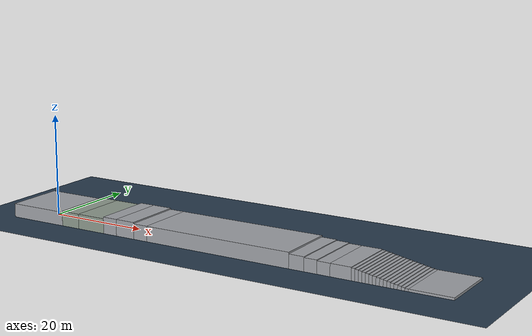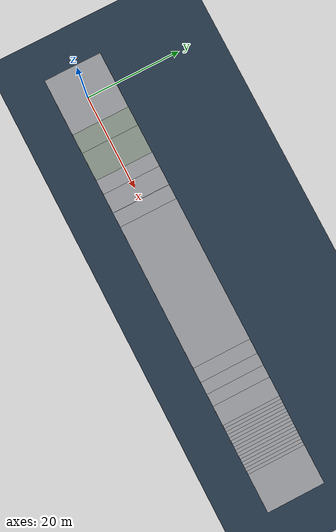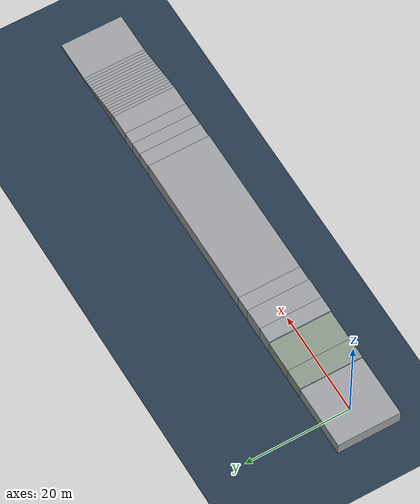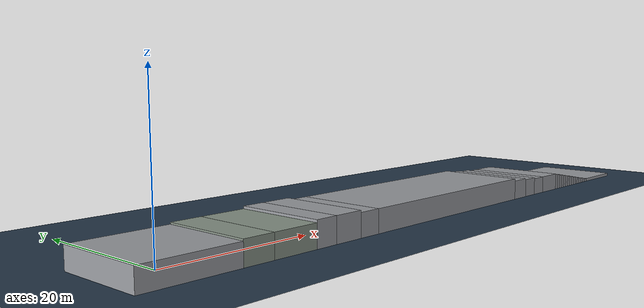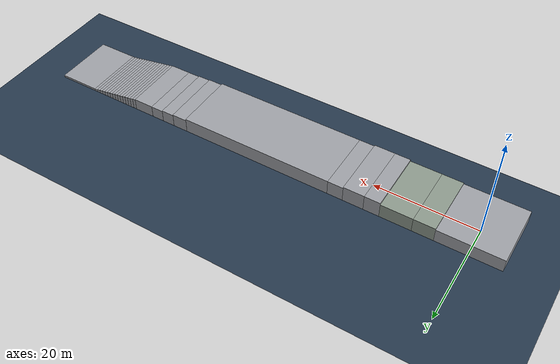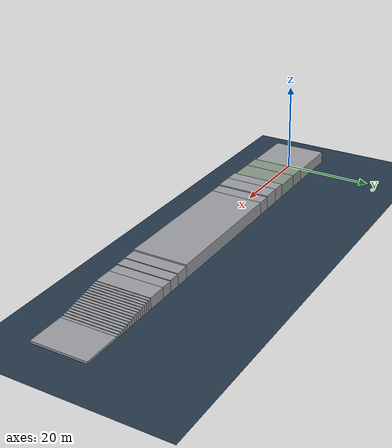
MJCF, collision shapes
<!-- 决赛路线彩排场景 bench_route：按执行计划 §16 要素表 + 点云实测剖面生成。摩擦 1.00。
     由 s10_dev/gen_route_rehearsal.py 生成，勿手改。尺寸未现场卷尺实测，仅用于切换逻辑与耗时彩排。-->
<mujoco model="S10_bench_route">
    <include file="./S10.xml"/>
    <worldbody>
      <body name="route">
        <geom name="seg00_start" type="box" pos="0.0000 0 1.3900" size="6.0000 6.0 1.3400" rgba="0.62 0.63 0.65 1" friction="1.00 0.01 0.001" condim="3"/>
        <geom name="seg01_grass_up" type="box" pos="8.0000 0 1.5000" size="2.0000 6.0 1.4500" rgba="0.55 0.60 0.55 1" friction="1.00 0.01 0.001" condim="3"/>
        <geom name="seg02_grass" type="box" pos="13.0000 0 1.5000" size="3.0000 6.0 1.4500" rgba="0.55 0.60 0.55 1" friction="1.00 0.01 0.001" condim="3"/>
        <geom name="seg03_gabion_up" type="box" pos="17.5000 0 1.6650" size="1.5000 6.0 1.6150" rgba="0.62 0.63 0.65 1" friction="1.00 0.01 0.001" condim="3"/>
        <geom name="seg04_plateau" type="box" pos="21.0000 0 1.6650" size="2.0000 6.0 1.6150" rgba="0.62 0.63 0.65 1" friction="1.00 0.01 0.001" condim="3"/>
        <geom name="seg05_road_down" type="box" pos="24.5000 0 1.5400" size="1.5000 6.0 1.4900" rgba="0.62 0.63 0.65 1" friction="1.00 0.01 0.001" condim="3"/>
        <geom name="seg06_straight" type="box" pos="41.0000 0 1.5400" size="15.0000 6.0 1.4900" rgba="0.62 0.63 0.65 1" friction="1.00 0.01 0.001" condim="3"/>
        <geom name="seg07_curb_down" type="box" pos="57.5000 0 1.3850" size="1.5000 6.0 1.3350" rgba="0.62 0.63 0.65 1" friction="1.00 0.01 0.001" condim="3"/>
        <geom name="seg08_two15_a" type="box" pos="60.2500 0 1.3100" size="1.2500 6.0 1.2600" rgba="0.62 0.63 0.65 1" friction="1.00 0.01 0.001" condim="3"/>
        <geom name="seg09_two15_b" type="box" pos="62.7500 0 1.2350" size="1.2500 6.0 1.1850" rgba="0.62 0.63 0.65 1" friction="1.00 0.01 0.001" condim="3"/>
        <geom name="seg10_approach" type="box" pos="66.0000 0 1.2350" size="2.0000 6.0 1.1850" rgba="0.62 0.63 0.65 1" friction="1.00 0.01 0.001" condim="3"/>
        <geom name="seg11_stair00" type="box" pos="68.3250 0 1.1750" size="0.3250 6.0 1.1250" rgba="0.62 0.63 0.65 1" friction="1.00 0.01 0.001" condim="3"/>
        <geom name="seg12_stair01" type="box" pos="68.9750 0 1.1150" size="0.3250 6.0 1.0650" rgba="0.62 0.63 0.65 1" friction="1.00 0.01 0.001" condim="3"/>
        <geom name="seg13_stair02" type="box" pos="69.6250 0 1.0550" size="0.3250 6.0 1.0050" rgba="0.62 0.63 0.65 1" friction="1.00 0.01 0.001" condim="3"/>
        <geom name="seg14_stair03" type="box" pos="70.2750 0 0.9950" size="0.3250 6.0 0.9450" rgba="0.62 0.63 0.65 1" friction="1.00 0.01 0.001" condim="3"/>
        <geom name="seg15_stair04" type="box" pos="70.9250 0 0.9350" size="0.3250 6.0 0.8850" rgba="0.62 0.63 0.65 1" friction="1.00 0.01 0.001" condim="3"/>
        <geom name="seg16_stair05" type="box" pos="71.5750 0 0.8750" size="0.3250 6.0 0.8250" rgba="0.62 0.63 0.65 1" friction="1.00 0.01 0.001" condim="3"/>
        <geom name="seg17_stair06" type="box" pos="72.2250 0 0.8150" size="0.3250 6.0 0.7650" rgba="0.62 0.63 0.65 1" friction="1.00 0.01 0.001" condim="3"/>
        <geom name="seg18_stair07" type="box" pos="72.8750 0 0.7550" size="0.3250 6.0 0.7050" rgba="0.62 0.63 0.65 1" friction="1.00 0.01 0.001" condim="3"/>
        <geom name="seg19_stair08" type="box" pos="73.5250 0 0.6950" size="0.3250 6.0 0.6450" rgba="0.62 0.63 0.65 1" friction="1.00 0.01 0.001" condim="3"/>
        <geom name="seg20_stair09" type="box" pos="74.1750 0 0.6350" size="0.3250 6.0 0.5850" rgba="0.62 0.63 0.65 1" friction="1.00 0.01 0.001" condim="3"/>
        <geom name="seg21_stair10" type="box" pos="74.8250 0 0.5750" size="0.3250 6.0 0.5250" rgba="0.62 0.63 0.65 1" friction="1.00 0.01 0.001" condim="3"/>
        <geom name="seg22_stair11" type="box" pos="75.4750 0 0.5150" size="0.3250 6.0 0.4650" rgba="0.62 0.63 0.65 1" friction="1.00 0.01 0.001" condim="3"/>
        <geom name="seg23_stair12" type="box" pos="76.1250 0 0.4550" size="0.3250 6.0 0.4050" rgba="0.62 0.63 0.65 1" friction="1.00 0.01 0.001" condim="3"/>
        <geom name="seg24_stair13" type="box" pos="76.7750 0 0.3950" size="0.3250 6.0 0.3450" rgba="0.62 0.63 0.65 1" friction="1.00 0.01 0.001" condim="3"/>
        <geom name="seg25_stair14" type="box" pos="77.4250 0 0.3350" size="0.3250 6.0 0.2850" rgba="0.62 0.63 0.65 1" friction="1.00 0.01 0.001" condim="3"/>
        <geom name="seg26_stair15" type="box" pos="78.0750 0 0.2750" size="0.3250 6.0 0.2250" rgba="0.62 0.63 0.65 1" friction="1.00 0.01 0.001" condim="3"/>
        <geom name="seg27_plaza" type="box" pos="82.4000 0 0.2750" size="4.0000 6.0 0.2250" rgba="0.62 0.63 0.65 1" friction="1.00 0.01 0.001" condim="3"/>
      </body>
    </worldbody>
</mujoco>

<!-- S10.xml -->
<mujoco model="S10">
  <default>
      <default class="robot">
          <default class="motor">
              <joint/>
              <motor/>
          </default>
          <default class="visual">
              <geom material="default_material" contype="0" conaffinity="0" group="2"/>
          </default>
          <default class="collision">
              <geom material="collision_material" condim="3" contype="1" conaffinity="1" solref="0.005 1"
                    friction="1 0.01 0.001" density="0" group="1"/>
          </default>
      </default>
  </default>

  <compiler angle="radian" meshdir="../meshes/"/>
  <compiler autolimits="true"/>

  <asset>
    <material name="default_material" rgba="0.7 0.7 0.7 1"/>
    <material name="collision_material" rgba="0.0 0.4 0.8 0.2"/>
    <mesh name="base_link" file="base_link.STL"/>
    <mesh name="fl_hipx" file="fl_hipx.STL"/>
    <mesh name="fl_hipy" file="fl_hipy.STL"/>
    <mesh name="fl_knee" file="fl_knee.STL"/>
    <mesh name="fl_wheel" file="fl_wheel.STL"/>
    <mesh name="fr_hipx" file="fr_hipx.STL"/>
    <mesh name="fr_hipy" file="fr_hipy.STL"/>
    <mesh name="fr_knee" file="fr_knee.STL"/>
    <mesh name="fr_wheel" file="fr_wheel.STL"/>
    <mesh name="hl_hipx" file="hl_hipx.STL"/>
    <mesh name="hl_hipy" file="hl_hipy.STL"/>
    <mesh name="hl_knee" file="hl_knee.STL"/>
    <mesh name="hl_wheel" file="hl_wheel.STL"/>
    <mesh name="hr_hipx" file="hr_hipx.STL"/>
    <mesh name="hr_hipy" file="hr_hipy.STL"/>
    <mesh name="hr_knee" file="hr_knee.STL"/>
    <mesh name="hr_wheel" file="hr_wheel.STL"/>
    <texture name="texplane" type="2d" builtin="checker" rgb1=".2 .3 .4" rgb2=".1 0.15 0.2"
              width="512" height="512"/>
    <material name='MatPlane' reflectance='0.3' texture="texplane" texrepeat="1 1" texuniform="true"/>
  </asset>

  <worldbody>
    <!-- 灯光 -->
    <light directional="true" pos="-0.5 0.5 3" dir="0 0 -1"/>
    <geom name='floor' pos='0 0 0' size='100 100 .125' type='plane' material="MatPlane" condim='3'
          friction="1 0.01 0.01" group="0"/>

    <body name="base_link" pos="0 0.0 0.5" quat="1 0 0 0" childclass="robot">
      <freejoint name="floating_base"/>
      <inertial pos="-0.000512 0.057317 0.001182"
                quat="1 0 0 0"
                mass="8.023087" diaginertia="0.115559 0.171329 0.262028"/>
        <site name="imu_site" pos="0.0075 -0.0373 0.0556" size="0.005" rgba="1 0 0 1"/>
        <site name="base_site" pos="0 0 0" quat="1 0 0 0"/>
        <body name="front_lidar_link" pos="0.2 0 0.08" euler="0 0.436332313 0">
          <site name="front_lidar_site" type="sphere" size="0.025" rgba="0 0.8 0.8 1"/>
        </body>
      <geom type="mesh" class="visual" mesh="base_link"/>
      <geom size="0.08 0.3" pos="0 0.024 0" quat="0.707107 0 0.707107 0" type="cylinder" class="collision"/>
      <geom size="0.08 0.3" pos="0 -0.024 0" quat="0.707107 0 0.707107 0" type="cylinder" class="collision"/>
      <geom size="0.08 0.024 0.3" quat="0.707107 0 0.707107 0" type="box" class="collision"/>
      <body name="fl_hipx" pos="0.2277 0.0574 0">
        <inertial pos="-0.005034 0.023524 4.6e-05" quat="0.25609 0.665262 -0.228203 0.663151" mass="0.627405" diaginertia="0.000415056 0.000391723 0.000223221"/>
        <joint name="fl_hipx_joint" pos="0 0 0" axis="-1 0 0" range="-0.6109 0.6109" actuatorfrcrange="-50 50"/>
        <geom type="mesh" class="visual" mesh="fl_hipx"/>
        <geom size="0.04 0.05" pos="0 0.054 0" quat="0.707107 0.707107 0 0" type="cylinder" class="collision"/>
        <body name="fl_hipy" pos="0 0.0779 0">
          <inertial pos="7.4e-05 0.018439 -0.129675" quat="0.701304 -0.0510428 0.0516391 0.709155" mass="0.885874" diaginertia="0.00454086 0.00445199 0.00030515"/>
          <joint name="fl_hipy_joint" pos="0 0 0" axis="0 -1 0" range="-2.5307 2.5307" actuatorfrcrange="-50 50"/>
          <geom type="mesh" class="visual" mesh="fl_hipy"/>
          <geom size="0.032 0.012 0.09" pos="0 0.012 -0.09" type="box" class="collision"/>
          <geom size="0.04 0.04" pos="0 0.018 -0.18" quat="0.707107 0.707107 0 0" type="cylinder" class="collision"/>
          <body name="fl_knee" pos="0 0 -0.18">
            <inertial pos="-3.2e-05 0.013504 -0.156308" quat="0.703786 -0.068447 0.068447 0.703786" mass="0.640283" diaginertia="0.0022296 0.002221 0.000193398"/>
            <joint name="fl_knee_joint" pos="0 0 0" axis="0 -1 0" range="-2.7227 2.7227" actuatorfrcrange="-50 50"/>
            <geom type="mesh" class="visual" mesh="fl_knee"/>
            <geom size="0.029 0.01 0.09" pos="0 -0.012 -0.09" type="box" class="collision"/>
            <geom size="0.04 0.025" pos="0 0.002 -0.18" quat="0.707107 0.707107 0 0" type="cylinder" class="collision"/>
            <body name="fl_wheel" pos="0 0.045891 -0.18">
              <inertial pos="-8e-06 0.001694 -5e-06" quat="0.707107 0 0 0.707107" mass="0.587952" diaginertia="0.002003 0.001059 0.001059"/>
              <joint name="fl_wheel_joint" pos="0 0 0" axis="0 -1 0" actuatorfrcrange="-14 14"/>
              <geom type="mesh" class="visual" mesh="fl_wheel"/>
              <geom size="0.081 0.0185" quat="0.707107 0.707107 0 0" type="cylinder" class="collision"/>
            </body>
          </body>
        </body>
      </body>
      <body name="fr_hipx" pos="0.2277 -0.0574 0">
        <inertial pos="-0.004831 -0.02349 0.000169" quat="-0.278522 0.675499 0.205833 0.650968" mass="0.626546" diaginertia="0.000415238 0.000395047 0.000218715"/>
        <joint name="fr_hipx_joint" pos="0 0 0" axis="-1 0 0" range="-0.6109 0.6109" actuatorfrcrange="-50 50"/>
        <geom type="mesh" class="visual" mesh="fr_hipx"/>
        <geom size="0.04 0.05" pos="0 -0.054 0" quat="0.707107 0.707107 0 0" type="cylinder" class="collision"/>
        <body name="fr_hipy" pos="0 -0.0779 0">
          <inertial pos="-7.4e-05 -0.018439 -0.129675" quat="0.701304 0.0510428 -0.0516391 0.709155" mass="0.885874" diaginertia="0.00454086 0.00445199 0.00030515"/>
          <joint name="fr_hipy_joint" pos="0 0 0" axis="0 -1 0" range="-2.5307 2.5307" actuatorfrcrange="-50 50"/>
          <geom type="mesh" class="visual" mesh="fr_hipy"/>
          <geom size="0.032 0.012 0.09" pos="0 -0.012 -0.09" type="box" class="collision"/>
          <geom size="0.04 0.04" pos="0 -0.018 -0.18" quat="0.707107 0.707107 0 0" type="cylinder" class="collision"/>
          <body name="fr_knee" pos="0 0 -0.18">
            <inertial pos="3.2e-05 -0.013504 -0.156308" quat="0.703786 0.068447 -0.068447 0.703786" mass="0.640283" diaginertia="0.0022296 0.002221 0.000193398"/>
            <joint name="fr_knee_joint" pos="0 0 0" axis="0 -1 0" range="-2.7227 2.7227" actuatorfrcrange="-50 50"/>
            <geom type="mesh" class="visual" mesh="fr_knee"/>
            <geom size="0.029 0.01 0.09" pos="0 0.012 -0.09" type="box" class="collision"/>
            <geom size="0.04 0.025" pos="0 -0.002 -0.18" quat="0.707107 0.707107 0 0" type="cylinder" class="collision"/>
            <body name="fr_wheel" pos="0 -0.045891 -0.18">
              <inertial pos="8e-06 -0.001694 5e-06" quat="0.707107 0 0 0.707107" mass="0.587952" diaginertia="0.002003 0.001059 0.001059"/>
              <joint name="fr_wheel_joint" pos="0 0 0" axis="0 -1 0" actuatorfrcrange="-14 14"/>
              <geom type="mesh" class="visual" mesh="fr_wheel"/>
              <geom size="0.081 0.0185" quat="0.707107 0.707107 0 0" type="cylinder" class="collision"/>
            </body>
          </body>
        </body>
      </body>
      <body name="hl_hipx" pos="-0.2277 0.0574 0">
        <inertial pos="0.004831 0.02349 0.000169" quat="-0.205833 0.650968 0.278522 0.675499" mass="0.626546" diaginertia="0.000415238 0.000395047 0.000218715"/>
        <joint name="hl_hipx_joint" pos="0 0 0" axis="-1 0 0" range="-0.6109 0.6109" actuatorfrcrange="-50 50"/>
        <geom type="mesh" class="visual" mesh="hl_hipx"/>
        <geom size="0.04 0.05" pos="0 0.054 0" quat="0.707107 0.707107 0 0" type="cylinder" class="collision"/>
        <body name="hl_hipy" pos="0 0.0779 0">
          <inertial pos="7.4e-05 0.018439 -0.129675" quat="0.701304 -0.0510428 0.0516391 0.709155" mass="0.885874" diaginertia="0.00454086 0.00445199 0.00030515"/>
          <joint name="hl_hipy_joint" pos="0 0 0" axis="0 -1 0" range="-2.5307 2.5307" actuatorfrcrange="-50 50"/>
          <geom type="mesh" class="visual" mesh="hl_hipy"/>
          <geom size="0.032 0.012 0.09" pos="0 0.012 -0.09" type="box" class="collision"/>
          <geom size="0.04 0.04" pos="0 0.018 -0.18" quat="0.707107 0.707107 0 0" type="cylinder" class="collision"/>
          <body name="hl_knee" pos="0 0 -0.18">
            <inertial pos="-3.2e-05 0.013504 -0.156308" quat="0.703786 -0.068447 0.068447 0.703786" mass="0.640283" diaginertia="0.0022296 0.002221 0.000193398"/>
            <joint name="hl_knee_joint" pos="0 0 0" axis="0 -1 0" range="-2.7227 2.7227" actuatorfrcrange="-50 50"/>
            <geom type="mesh" class="visual" mesh="hl_knee"/>
            <geom size="0.029 0.01 0.09" pos="0 -0.012 -0.09" type="box" class="collision"/>
            <geom size="0.04 0.025" pos="0 0.002 -0.18" quat="0.707107 0.707107 0 0" type="cylinder" class="collision"/>
            <body name="hl_wheel" pos="0 0.054891 -0.18">
              <inertial pos="-8e-06 0.001694 -5e-06" quat="0.707107 0 0 0.707107" mass="0.587952" diaginertia="0.002003 0.001059 0.001059"/>
              <joint name="hl_wheel_joint" pos="0 0 0" axis="0 -1 0" actuatorfrcrange="-14 14"/>
              <geom type="mesh" class="visual" mesh="hl_wheel"/>
              <geom size="0.081 0.0185" quat="0.707107 0.707107 0 0" type="cylinder" class="collision"/>
            </body>
          </body>
        </body>
      </body>
      <body name="hr_hipx" pos="-0.2277 -0.0574 0">
        <inertial pos="0.005034 -0.023524 4.6e-05" quat="0.228203 0.663151 -0.25609 0.665262" mass="0.627405" diaginertia="0.000415056 0.000391723 0.000223221"/>
        <joint name="hr_hipx_joint" pos="0 0 0" axis="-1 0 0" range="-0.6109 0.6109" actuatorfrcrange="-50 50"/>
        <geom type="mesh" class="visual" mesh="hr_hipx"/>
        <geom size="0.04 0.05" pos="0 -0.054 0" quat="0.707107 0.707107 0 0" type="cylinder" class="collision"/>
        <body name="hr_hipy" pos="0 -0.0779 0">
          <inertial pos="-7.4e-05 -0.018439 -0.129675" quat="0.701304 0.0510428 -0.0516391 0.709155" mass="0.885874" diaginertia="0.00454086 0.00445199 0.00030515"/>
          <joint name="hr_hipy_joint" pos="0 0 0" axis="0 -1 0" range="-2.5307 2.5307" actuatorfrcrange="-50 50"/>
          <geom type="mesh" class="visual" mesh="hr_hipy"/>
          <geom size="0.032 0.012 0.09" pos="0 -0.012 -0.09" type="box" class="collision"/>
          <geom size="0.04 0.04" pos="0 -0.018 -0.18" quat="0.707107 0.707107 0 0" type="cylinder" class="collision"/>
          <body name="hr_knee" pos="0 0 -0.18">
            <inertial pos="3.2e-05 -0.013504 -0.156308" quat="0.703786 0.068447 -0.068447 0.703786" mass="0.640283" diaginertia="0.0022296 0.002221 0.000193398"/>
            <joint name="hr_knee_joint" pos="0 0 0" axis="0 -1 0" range="-2.7227 2.7227" actuatorfrcrange="-50 50"/>
            <geom type="mesh" class="visual" mesh="hr_knee"/>
            <geom size="0.029 0.01 0.09" pos="0 0.012 -0.09" type="box" class="collision"/>
            <geom size="0.04 0.025" pos="0 -0.002 -0.18" quat="0.707107 0.707107 0 0" type="cylinder" class="collision"/>
            <body name="hr_wheel" pos="0 -0.045891 -0.18">
              <inertial pos="8e-06 -0.001694 5e-06" quat="0.707107 0 0 0.707107" mass="0.587952" diaginertia="0.002003 0.001059 0.001059"/>
              <joint name="hr_wheel_joint" pos="0 0 0" axis="0 -1 0" actuatorfrcrange="-14 14"/>
              <geom type="mesh" class="visual" mesh="hr_wheel"/>
              <geom size="0.081 0.0185" quat="0.707107 0.707107 0 0" type="cylinder" class="collision"/>
            </body>
          </body>
        </body>
      </body>
    </body>
  </worldbody>

    <actuator>
        <motor name="fl_hipx_joint" joint="fl_hipx_joint" ctrllimited="true" ctrlrange="-50.00 50.00" gear="1"/>
        <motor name="fl_hipy_joint" joint="fl_hipy_joint" ctrllimited="true" ctrlrange="-50.00 50.00" gear="1"/>
        <motor name="fl_knee_joint" joint="fl_knee_joint" ctrllimited="true" ctrlrange="-50.00 50.00" gear="1"/>
        <motor name="fl_wheel_joint" joint="fl_wheel_joint" ctrllimited="true" ctrlrange="-14.00 14.00" gear="1"/>
        <motor name="fr_hipx_joint" joint="fr_hipx_joint" ctrllimited="true" ctrlrange="-50.00 50.00" gear="1"/>
        <motor name="fr_hipy_joint" joint="fr_hipy_joint" ctrllimited="true" ctrlrange="-50.00 50.00" gear="1"/>
        <motor name="fr_knee_joint" joint="fr_knee_joint" ctrllimited="true" ctrlrange="-50.00 50.00" gear="1"/>
        <motor name="fr_wheel_joint" joint="fr_wheel_joint" ctrllimited="true" ctrlrange="-14.00 14.00" gear="1"/>
        <motor name="hl_hipx_joint" joint="hl_hipx_joint" ctrllimited="true" ctrlrange="-50.00 50.00" gear="1"/>
        <motor name="hl_hipy_joint" joint="hl_hipy_joint" ctrllimited="true" ctrlrange="-50.00 50.00" gear="1"/>
        <motor name="hl_knee_joint" joint="hl_knee_joint" ctrllimited="true" ctrlrange="-50.00 50.00" gear="1"/>
        <motor name="hl_wheel_joint" joint="hl_wheel_joint" ctrllimited="true" ctrlrange="-14.00 14.00" gear="1"/>
        <motor name="hr_hipx_joint" joint="hr_hipx_joint" ctrllimited="true" ctrlrange="-50.00 50.00" gear="1"/>
        <motor name="hr_hipy_joint" joint="hr_hipy_joint" ctrllimited="true" ctrlrange="-50.00 50.00" gear="1"/>
        <motor name="hr_knee_joint" joint="hr_knee_joint" ctrllimited="true" ctrlrange="-50.00 50.00" gear="1"/>
        <motor name="hr_wheel_joint" joint="hr_wheel_joint" ctrllimited="true" ctrlrange="-14.00 14.00" gear="1"/>
    </actuator>

    <contact>
        <exclude body1="base_link" body2="fl_hipx"/>
        <exclude body1="fl_hipx" body2="fl_hipy"/>
        <exclude body1="fl_hipy" body2="fl_knee"/>
        <exclude body1="fl_knee" body2="fl_wheel"/>

        <exclude body1="base_link" body2="fr_hipx"/>
        <exclude body1="fr_hipx" body2="fr_hipy"/>
        <exclude body1="fr_hipy" body2="fr_knee"/>
        <exclude body1="fr_knee" body2="fr_wheel"/>

        <exclude body1="base_link" body2="hl_hipx"/>
        <exclude body1="hl_hipx" body2="hl_hipy"/>
        <exclude body1="hl_hipy" body2="hl_knee"/>
        <exclude body1="hl_knee" body2="hl_wheel"/>

        <exclude body1="base_link" body2="hr_hipx"/>
        <exclude body1="hr_hipx" body2="hr_hipy"/>
        <exclude body1="hr_hipy" body2="hr_knee"/>
        <exclude body1="hr_knee" body2="hr_wheel"/>

    </contact>

    <sensor>
        <framequat name="base_quat" objtype="site" objname="base_site"/>
        <accelerometer site="imu_site"/>
        <gyro site="imu_site"/>
    </sensor>
</mujoco>
